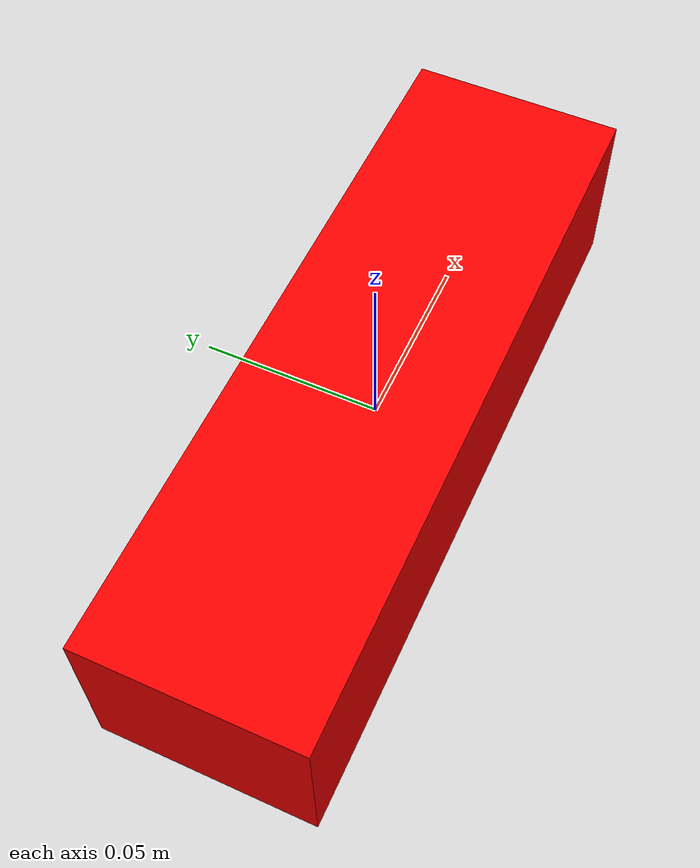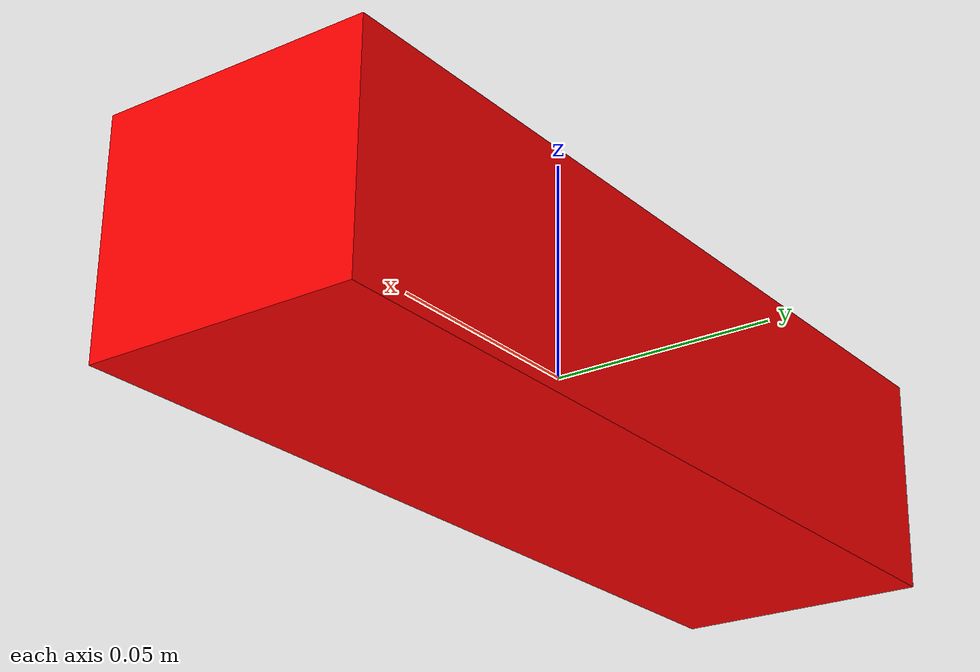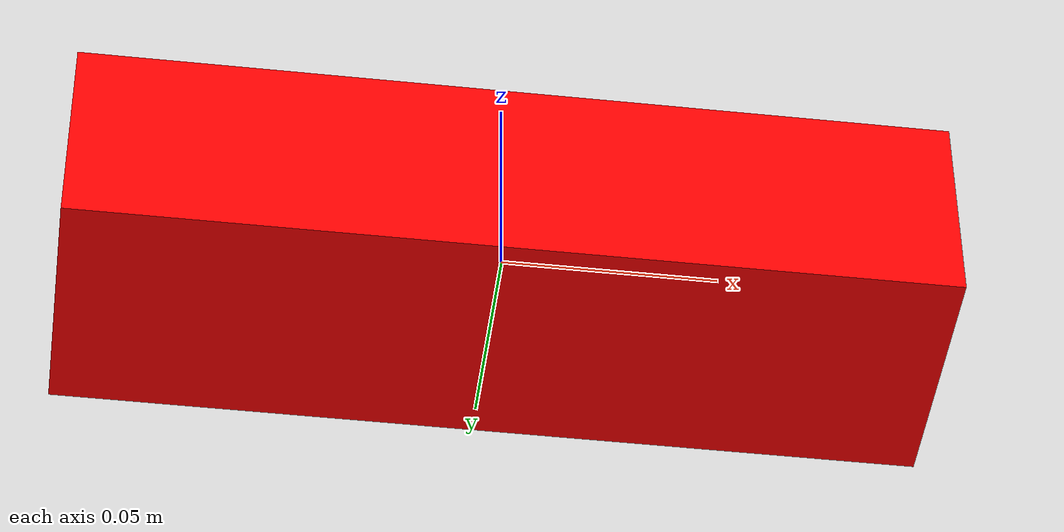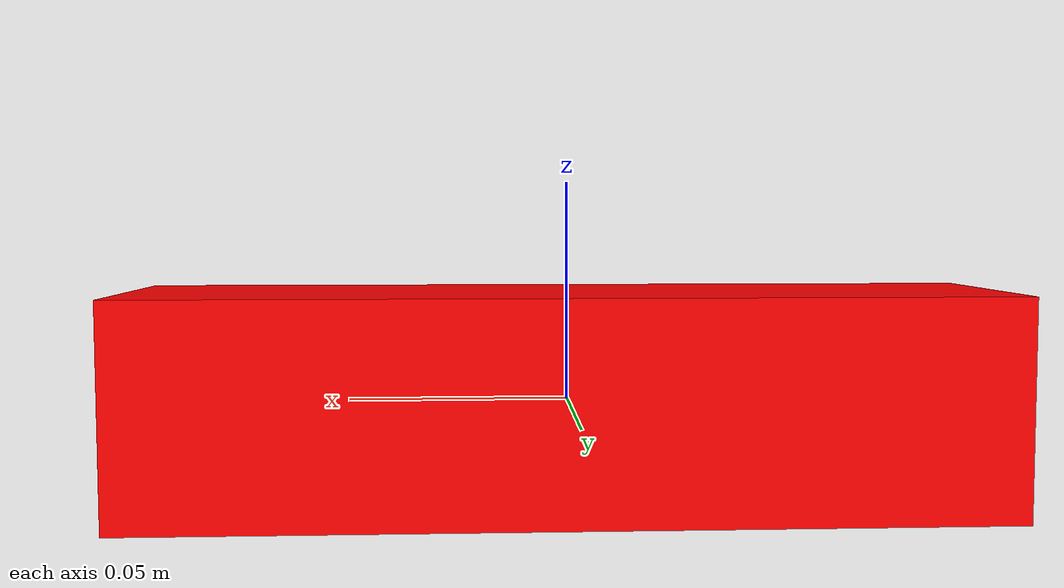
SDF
<?xml version="1.0" ?>
<sdf version="1.5">
  <model name="prismAV20x6x5">
    <link name="link">
      <pose>0 0 0 0 0 0</pose>
      <inertial>
        <mass>2.46</mass>
        <inertia>
          <ixx>0.0012505</ixx>
          <ixy>0</ixy>
          <ixz>0</ixz>
          <iyy>0.0087125</iyy>
          <iyz>0</iyz>
          <izz>0.008938</izz>
        </inertia>
      </inertial>

      <collision name="collision">
        <geometry>
          <box>
            <size>0.2 0.06 0.05</size>
          </box>
        </geometry>
        <surface>
          <contact>
            <ode>
              <max_vel>0.1</max_vel>
              <min_depth>0.001</min_depth>
              <soft_erp>0.5</soft_erp>
              <soft_cfm>0.001</soft_cfm>
            </ode>
          </contact>
          <friction>
            <ode>
              <mu>10000.0</mu>
              <mu2>10000.0</mu2>
            </ode>
          </friction>
        </surface>
      </collision>

      <visual name="visual">
        <geometry>
          <box>
            <size>0.2 0.06 0.05</size>
          </box>
        </geometry>
        <material>
          <ambient>1 0 0 1</ambient>
          <diffuse>1 0 0 1</diffuse>
          <specular>0.1 0.1 0.1 1</specular>
          <emissive>0 0 0 0</emissive>
        </material>
      </visual>

    </link>
  </model>
</sdf>
